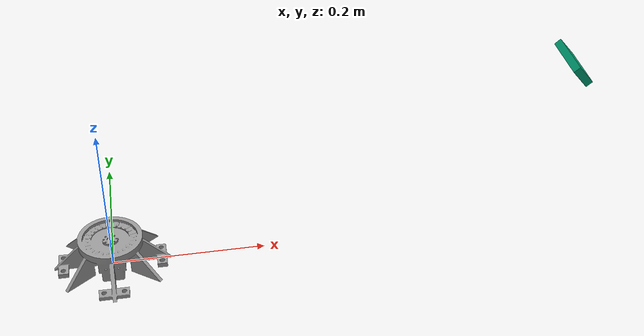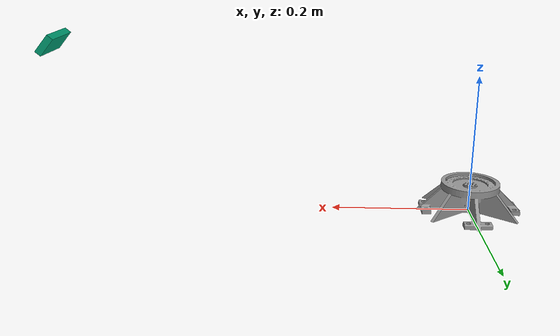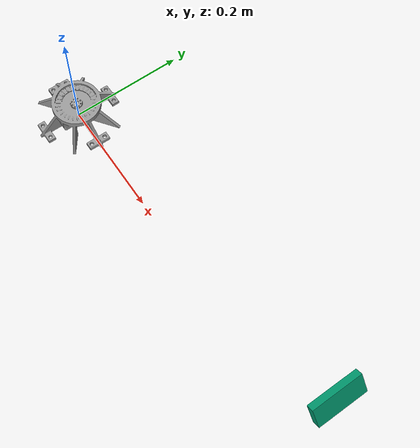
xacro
<?xml version="1.0"?>
<!-- Open_Manipulator Chain -->
<robot name="open_manipulator" xmlns:xacro="http://www.ros.org/wiki/xacro">

<!-- Import all Gazebo-customization elements, including Gazebo colors -->
  <xacro:include filename="$(find open_manipulator_support_description)/urdf/open_manipulator.gazebo.xacro"/>
<!-- Import Rviz colors -->
  <xacro:include filename="$(find open_manipulator_support_description)/urdf/materials.xacro" />
<!-- Import inertial Properties-->
  <xacro:include filename="$(find open_manipulator_support_description)/urdf/inertial_properties.xacro" />
<!-- Import inertial Properties-->
  <xacro:include filename="$(find open_manipulator_support_description)/urdf/mass_properties.xacro" />
<!-- Import Sensors-->
  <xacro:include filename="$(find open_manipulator_support_description)/urdf/sensors.xacro" />

 <!-- World -->
   <link name="world">
   </link>

<!-- World fixed joint -->
   <joint name="world_fixed" type="fixed">
     <parent link="world"/>
     <child link="base_link"/>
   </joint>

<!-- Base Link -->
  <link name="base_link">
	 <inertial>
      <mass value="${bl_mass}" />
      <origin xyz="${bl_cmx} ${bl_cmy} ${bl_cmz}"/>
      <inertia
        ixx="${bl_ixx}"
        ixy="${bl_ixy}"
        ixz="${bl_ixz}"
        iyy="${bl_iyy}"
        iyz="${bl_iyz}"
        izz="${bl_izz}" />
    </inertial>
	<visual>
		<geometry>
        	<mesh filename="package://open_manipulator_support_description/meshes/base_link.STL"/>
		</geometry>
		<material name="grey"/>
	</visual>
  </link>

<xacro:BW1092_camera parent="base_link">
  <origin xyz="0.52 0.0 0.18" rpy="0 0.7 3.14" />
</xacro:BW1092_camera>

</robot>

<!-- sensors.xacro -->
<robot xmlns:xacro="http://www.ros.org/wiki/xacro">

    <xacro:macro name="BW1092_camera" params="parent *origin">

        <!-- RGBD camera -->
        <link name="camera_link">
        <visual>
            <origin xyz="-0.1 0 0" rpy="1.57 0 1.57"/>
            <geometry>
                <box size="0.07 0.03 0.01"/>
            </geometry>
        </visual>

        </link>

        <link name="camera_rgb_frame" />

        <joint name="camera_link_joint" type="fixed">
            <xacro:insert_block name="origin" />
            <parent link="${parent}" />
            <child link="camera_link" />
        </joint>

        <joint name="camera_rgb_joint" type="fixed">
        <origin rpy="0 0 0" xyz="0 0.022 0" />
        <parent link="camera_link" />
        <child link="camera_rgb_frame" />
        </joint>

        <link name="camera_rgb_optical_frame" />

        <joint name="camera_rgb_optical_joint" type="fixed">
        <origin rpy="-1.57079632679 0 -1.57079632679" xyz="0 0 0" />
        <parent link="camera_rgb_frame" />
        <child link="camera_rgb_optical_frame" />
        </joint>

        <link name="camera_depth_frame" />

        <joint name="camera_depth_joint" type="fixed">
        <origin rpy="0 0 0" xyz="0 0.049 0" />
        <parent link="camera_link" />
        <child link="camera_depth_frame" />
        </joint>

        <link name="camera_depth_optical_frame" />

        <joint name="camera_depth_optical_joint" type="fixed">
        <origin rpy="-1.57079632679 0 -1.57079632679" xyz="0 0 0" />
        <parent link="camera_depth_frame" />
        <child link="camera_depth_optical_frame" />
        </joint>

        <!--RGBD camera -->
        <gazebo reference="camera_rgb_frame">
            <sensor type="depth" name="BW1092_camera">
                <always_on>true</always_on>
                <visualize>true</visualize>
                <update_rate>15.0</update_rate>
                <camera name="front">
                <horizontal_fov>1.5</horizontal_fov><!--default=1.047197-->
                <image>
                    <!-- openni_kinect plugin works only with BGR8 -->
                    <format>B8G8R8</format>
                    <width>640</width>
                    <height>480</height>
                </image>
                <clip>
                    <near>0.01</near>
                    <far>9</far>
                </clip>
                </camera>
                <plugin name="camera_controller" filename="libgazebo_ros_openni_kinect.so">
                    <baseline>0.1</baseline>
                    <alwaysOn>true</alwaysOn>
                    <updateRate>15.0</updateRate>
                    <cameraName>BW1092_camera</cameraName>
                    <imageTopicName>/camera/rgb/image_raw</imageTopicName>
                    <cameraInfoTopicName>/camera/rgb/camera_info</cameraInfoTopicName>
                    <depthImageTopicName>/camera/depth_registered/image_raw</depthImageTopicName>
                    <depthImageCameraInfoTopicName>/camera/depth_registered/camera_info</depthImageCameraInfoTopicName>
                    <pointCloudTopicName>/camera/depth_registered/points</pointCloudTopicName>
                    <frameName>camera_rgb_optical_frame</frameName>
                    <pointCloudCutoff>0.02</pointCloudCutoff>
                    <pointCloudCutoffMax>3.0</pointCloudCutoffMax>
                    <CxPrime>0</CxPrime>
                    <Cx>0</Cx>
                    <Cy>0</Cy>
                    <focalLength>0</focalLength>
                    <hackBaseline>0</hackBaseline>
                </plugin>
            </sensor>
        </gazebo>

    </xacro:macro>

</robot>
